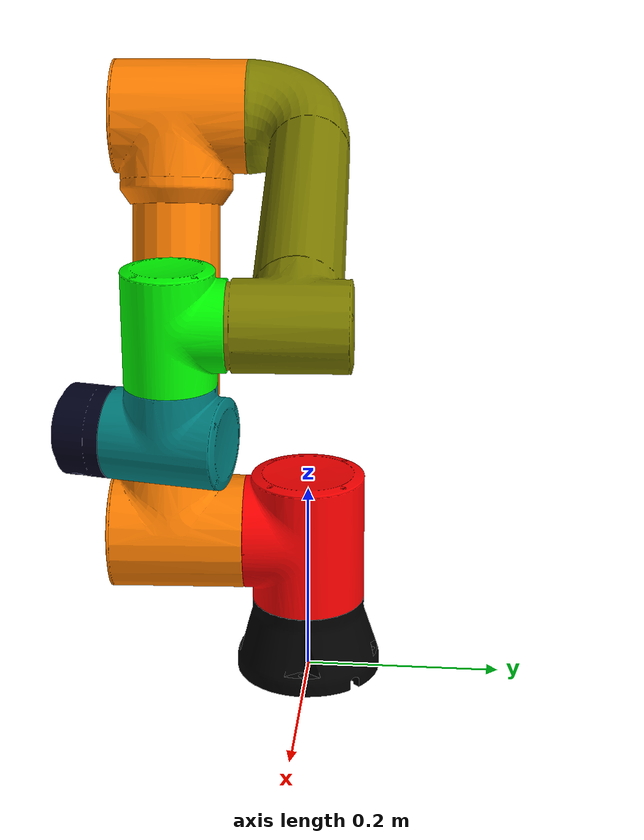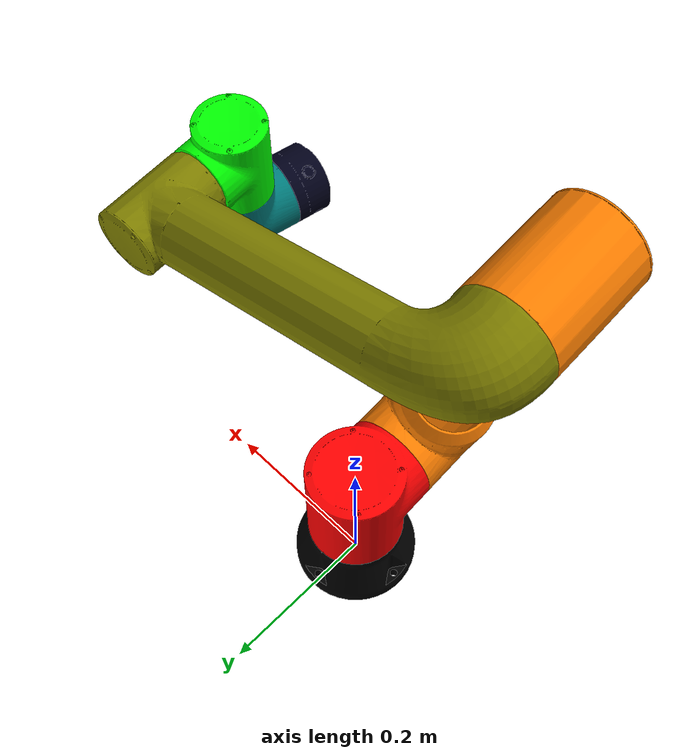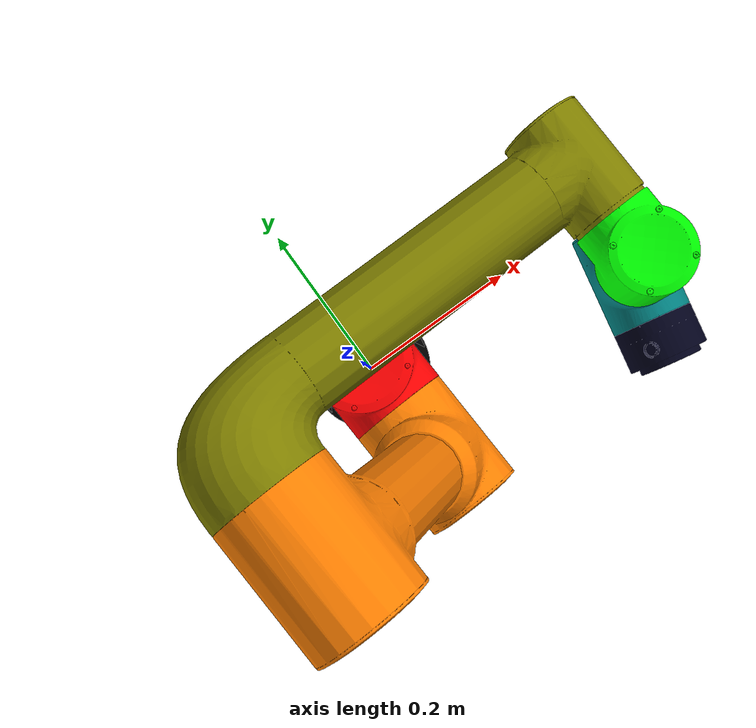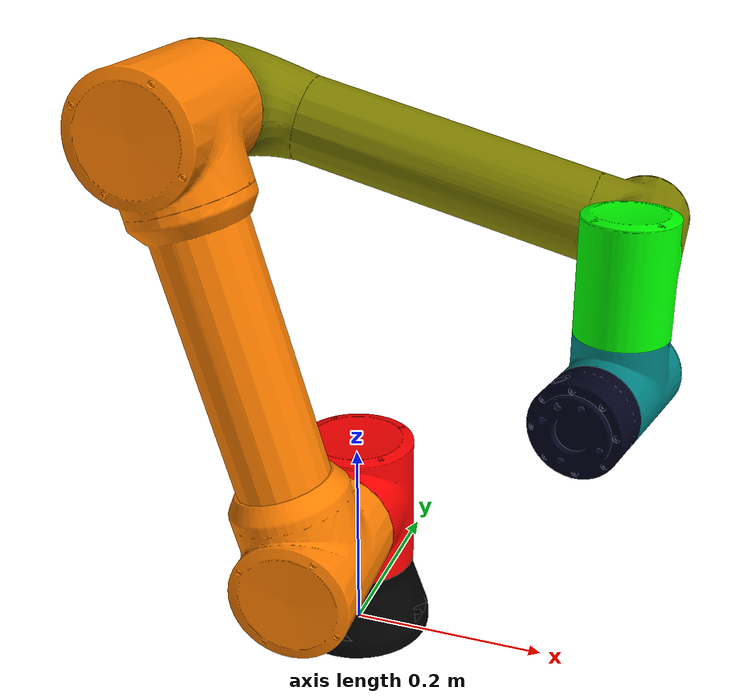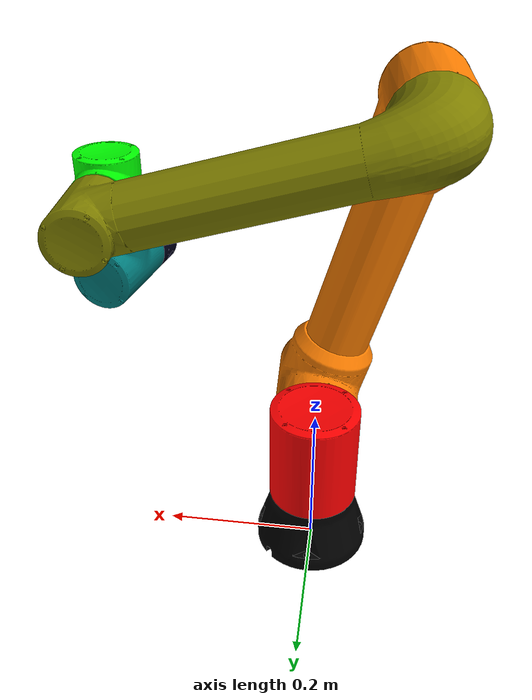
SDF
<?xml version="1.0" ?>
<sdf version='1.7'>

  <model name='FR5urdf'>
	<plugin
      filename="libControlMainFrameworkSystem.so"
      name="YF::MainFrameworkSystem">
    </plugin>

    <link name='base_link'>
      <inertial>
        <pose>-0.000319 0.042463 0.000297 0 -0 0</pose>
        <mass>0.599446</mass>
        <inertia>
          <ixx>0.00114206</ixx>
          <ixy>-7.1538e-06</ixy>
          <ixz>-5.6865e-06</ixz>
          <iyy>0.00167441</iyy>
          <iyz>6.63618e-06</iyz>
          <izz>0.00114168</izz>
        </inertia>
      </inertial>
      <collision name='base_link_collision'>
        <pose>0 0 0 0 -0 0</pose>
        <geometry>
          <mesh>
            <scale>1 1 1</scale>
            <uri>model://fr5_robotic_arm/meshes/base_link.STL</uri>
          </mesh>
        </geometry>
      </collision>
      <visual name='base_link_visual'>
        <pose>0 0 0 0 -0 0</pose>
        <geometry>
          <mesh>
            <scale>1 1 1</scale>
            <uri>model://fr5_robotic_arm/meshes/base_link.STL</uri>
          </mesh>
        </geometry>
        <material>
	      <ambient>0.0 0.0 0.0 1</ambient>
          <diffuse>0.0 0.0 0.0 1</diffuse>
          <specular>0.8 0.8 0.8 1</specular>
        </material>
      </visual>
    </link>
    <joint name='joint1' type='revolute'>
      <pose relative_to='base_link'>0 0 0.074 1.5708 0 0.051335</pose>
      <parent>base_link</parent>
      <child>link1</child>
      <axis>
        <xyz>0 1 0</xyz>
        <limit>
          <lower>-3.05433</lower>
          <upper>3.05433</upper>
          <effort>150</effort>
          <velocity>3.15</velocity>
        </limit>
        <dynamics>
          <spring_reference>0</spring_reference>
          <spring_stiffness>0</spring_stiffness>
        </dynamics>
      </axis>
	  <sensor name="joint1_ft" type="force_torque">
		<always_on>1</always_on>
		<update_rate>1000</update_rate>
		<visualize>true</visualize>
		<topic>joint1_ft</topic>
	  </sensor>

    </joint>
    <link name='link1'>
      <pose relative_to='joint1'>0 0 0 0 -0 0</pose>
      <inertial>
        <pose>1e-06 0.072291 0.004092 0 -0 0</pose>
        <mass>1.62121</mass>
        <inertia>
          <ixx>0.00397289</ixx>
          <ixy>-8.72188e-09</ixy>
          <ixz>2.11892e-09</ixz>
          <iyy>0.00302865</iyy>
          <iyz>-4.76903e-05</iyz>
          <izz>0.00385313</izz>
        </inertia>
      </inertial>
      <collision name='link1_collision'>
        <pose>0 0 0 0 -0 0</pose>
        <geometry>
          <mesh>
            <scale>1 1 1</scale>
            <uri>model://fr5_robotic_arm/meshes/link1.STL</uri>
          </mesh>
        </geometry>
      </collision>
      <visual name='link1_visual'>
        <pose>0 0 0 0 -0 0</pose>
        <geometry>
          <mesh>
            <scale>1 1 1</scale>
            <uri>model://fr5_robotic_arm/meshes/link1.STL</uri>
          </mesh>
        </geometry>
        <material>
	  			<ambient>0.0 0.0 0.0 1</ambient>
            	<diffuse>1.0 0.0 0.0 1</diffuse>
            	<specular>0.0 0.0 0.0 1</specular>
        </material>
      </visual>
    </link>
    <joint name='joint2' type='revolute'>
      <pose relative_to='link1'>0 0.078 0.046619 0 0 -1.2908</pose>
      <parent>link1</parent>
      <child>link2</child>
      <axis>
        <xyz>0 0 1</xyz>
        <limit>
          <lower>-4.62512</lower>
          <upper>1.48353</upper>
          <effort>150</effort>
          <velocity>3.15</velocity>
        </limit>
        <dynamics>
          <spring_reference>0</spring_reference>
          <spring_stiffness>0</spring_stiffness>
        </dynamics>
      </axis>
    </joint>
    <link name='link2'>
      <pose relative_to='joint2'>0 0 0 0 -0 0</pose>
      <inertial>
        <pose>-0.2125 -0 0.087988 0 -0 0</pose>
        <mass>5.35537</mass>
        <inertia>
          <ixx>0.0105146</ixx>
          <ixy>1.02673e-07</ixy>
          <ixz>-3.20062e-09</ixz>
          <iyy>0.16884</iyy>
          <iyz>1.69634e-08</iyz>
          <izz>0.166559</izz>
        </inertia>
      </inertial>
      <collision name='link2_collision'>
        <pose>0 0 0 0 -0 0</pose>
        <geometry>
          <mesh>
            <scale>1 1 1</scale>
            <uri>model://fr5_robotic_arm/meshes/link2.STL</uri>
          </mesh>
        </geometry>
      </collision>
      <visual name='link2_visual'>
        <pose>0 0 0 0 -0 0</pose>
        <geometry>
          <mesh>
            <scale>1 1 1</scale>
            <uri>model://fr5_robotic_arm/meshes/link2.STL</uri>
          </mesh>
        </geometry>
        <material>
		  <ambient>0.0 0.0 0.0 1</ambient>
		  <diffuse>1.0 0.5 0.0 1</diffuse>
		  <specular>0.0 0.0 0.0 1</specular>
		</material>
      </visual>
    </link>
    <joint name='joint3' type='revolute'>
      <pose relative_to='link2'>-0.425 0 0 0 0 -2.1133</pose>
      <parent>link2</parent>
      <child>link3</child>
      <axis>
        <xyz>0 0 1</xyz>
        <limit>
          <lower>-2.82743</lower>
          <upper>2.82743</upper>
          <effort>150</effort>
          <velocity>3.15</velocity>
        </limit>
        <dynamics>
          <spring_reference>0</spring_reference>
          <spring_stiffness>0</spring_stiffness>
        </dynamics>
      </axis>
    </joint>
    <link name='link3'>
      <pose relative_to='joint3'>0 0 0 0 -0 0</pose>
      <inertial>
        <pose>-0.187974 3e-06 -0.039977 0 -0 0</pose>
        <mass>2.84204</mass>
        <inertia>
          <ixx>0.00315129</ixx>
          <ixy>-1.61393e-07</ixy>
          <ixz>-0.00254266</ixz>
          <iyy>0.0628538</iyy>
          <iyz>1.15155e-09</iyz>
          <izz>0.0624206</izz>
        </inertia>
      </inertial>
      <collision name='link3_collision'>
        <pose>0 0 0 0 -0 0</pose>
        <geometry>
          <mesh>
            <scale>1 1 1</scale>
            <uri>model://fr5_robotic_arm/meshes/link3.STL</uri>
          </mesh>
        </geometry>
      </collision>
      <visual name='link3_visual'>
        <pose>0 0 0 0 -0 0</pose>
        <geometry>
          <mesh>
            <scale>1 1 1</scale>
            <uri>model://fr5_robotic_arm/meshes/link3.STL</uri>
          </mesh>
        </geometry>
        <material>
	  			<ambient>0.0 0.0 0.0 1</ambient>
            	<diffuse>0.5 0.5 0.0 1</diffuse>
            	<specular>0.0 0.0 0.0 1</specular>
        </material>
      </visual>
    </link>
    <joint name='joint4' type='revolute'>
      <pose relative_to='link3'>-0.39501 0 0.006276 0 0 -2.8791</pose>
      <parent>link3</parent>
      <child>link4</child>
      <axis>
        <xyz>0 0 1</xyz>
        <limit>
          <lower>-4.62512</lower>
          <upper>1.48353</upper>
          <effort>28</effort>
          <velocity>3.2</velocity>
        </limit>
        <dynamics>
          <spring_reference>0</spring_reference>
          <spring_stiffness>0</spring_stiffness>
        </dynamics>
      </axis>
    </joint>
    <link name='link4'>
      <pose relative_to='joint4'>0 0 0 0 -0 0</pose>
      <inertial>
        <pose>1e-06 -0.003738 0.047961 0 -0 0</pose>
        <mass>0.602649</mass>
        <inertia>
          <ixx>0.000799625</ixx>
          <ixy>1.28025e-09</ixy>
          <ixz>1.74167e-08</ixz>
          <iyy>0.00057224</iyy>
          <iyz>1.39849e-05</iyz>
          <izz>0.000736736</izz>
        </inertia>
      </inertial>
      <collision name='link4_collision'>
        <pose>0 0 0 0 -0 0</pose>
        <geometry>
          <mesh>
            <scale>1 1 1</scale>
            <uri>model://fr5_robotic_arm/meshes/link4.STL</uri>
          </mesh>
        </geometry>
      </collision>
      <visual name='link4_visual'>
        <pose>0 0 0 0 -0 0</pose>
        <geometry>
          <mesh>
            <scale>1 1 1</scale>
            <uri>model://fr5_robotic_arm/meshes/link4.STL</uri>
          </mesh>
        </geometry>
        <material>
	  		<ambient>0.0 0.0 0.0 1</ambient>
            <diffuse>0.0 1.0 0.0 1</diffuse>
            <specular>0.0 0.0 0.0 1</specular>
        </material>
      </visual>
    </link>
    <joint name='joint5' type='revolute'>
      <pose relative_to='link4'>0 -0.0532 0.052905 0 -0.24913 0</pose>
      <parent>link4</parent>
      <child>link5</child>
      <axis>
        <xyz>0 -1 0</xyz>
        <limit>
          <lower>-3.05433</lower>
          <upper>3.05433</upper>
          <effort>28</effort>
          <velocity>3.2</velocity>
        </limit>
        <dynamics>
          <spring_reference>0</spring_reference>
          <spring_stiffness>0</spring_stiffness>
        </dynamics>
      </axis>
    </joint>
    <link name='link5'>
      <pose relative_to='joint5'>0 0 0 0 -0 0</pose>
      <inertial>
        <pose>-1e-06 -0.045058 0.003845 0 -0 0</pose>
        <mass>0.585859</mass>
        <inertia>
          <ixx>0.000763045</ixx>
          <ixy>1.36488e-08</ixy>
          <ixz>5.65391e-10</ixz>
          <iyy>0.000724548</iyy>
          <iyz>1.05861e-05</iyz>
          <izz>0.000536034</izz>
        </inertia>
      </inertial>
      <collision name='link5_collision'>
        <pose>0 0 0 0 -0 0</pose>
        <geometry>
          <mesh>
            <scale>1 1 1</scale>
            <uri>model://fr5_robotic_arm/meshes/link5.STL</uri>
          </mesh>
        </geometry>
      </collision>
      <visual name='link5_visual'>
        <pose>0 0 0 0 -0 0</pose>
        <geometry>
          <mesh>
            <scale>1 1 1</scale>
            <uri>model://fr5_robotic_arm/meshes/link5.STL</uri>
          </mesh>
        </geometry>
        <material>
	       <ambient>0.0 0.0 0.0 1</ambient>
           <diffuse>0.0 0.5 0.5 1</diffuse>
           <specular>0.0 0.0 0.0 1</specular>
        </material>
      </visual>
    </link>
    <joint name='joint6' type='revolute'>
      <pose relative_to='link5'>0 -0.0488 0.054969 0 -0 0.49221</pose>
      <parent>link5</parent>
      <child>link6</child>
      <axis>
        <xyz>0 0 1</xyz>
        <limit>
          <lower>-3.05433</lower>
          <upper>3.05433</upper>
          <effort>28</effort>
          <velocity>3.2</velocity>
        </limit>
        <dynamics>
          <spring_reference>0</spring_reference>
          <spring_stiffness>0</spring_stiffness>
        </dynamics>
      </axis>
    </joint>
    <link name='link6'>
      <pose relative_to='joint6'>0 0 0 0 -0 0</pose>
      <inertial>
        <pose>7.8e-05 1.8e-05 0.021153 0 -0 0</pose>
        <mass>0.1946</mass>
        <inertia>
          <ixx>0.000102669</ixx>
          <ixy>-7.4583e-10</ixy>
          <ixz>-4.40372e-08</ixz>
          <iyy>0.000103106</iyy>
          <iyz>8.37294e-08</iyz>
          <izz>0.000154093</izz>
        </inertia>
      </inertial>
      <collision name='link6_collision'>
        <pose>0 0 0 0 -0 0</pose>
        <geometry>
          <mesh>
            <scale>1 1 1</scale>
            <uri>model://fr5_robotic_arm/meshes/link6.STL</uri>
          </mesh>
        </geometry>
      </collision>
      <visual name='link6_visual'>
        <pose>0 0 0 0 -0 0</pose>
        <geometry>
          <mesh>
            <scale>1 1 1</scale>
            <uri>model://fr5_robotic_arm/meshes/link6.STL</uri>
          </mesh>
        </geometry>
        <material>
	      <ambient>0.0 0.0 0.0 1</ambient>
          <diffuse>0.0 0.0 0.1 1</diffuse>
          <specular>0.0 0.0 0.0 1</specular>
        </material>
      </visual>
    </link>
	<!-->Fix the base link<-->
    <joint name="base_fixed" type="fixed">
	  <pose>0 0 0 0 0 0</pose>
      <parent>world</parent>
      <child>base_link</child>
    </joint>
  </model>

</sdf>
